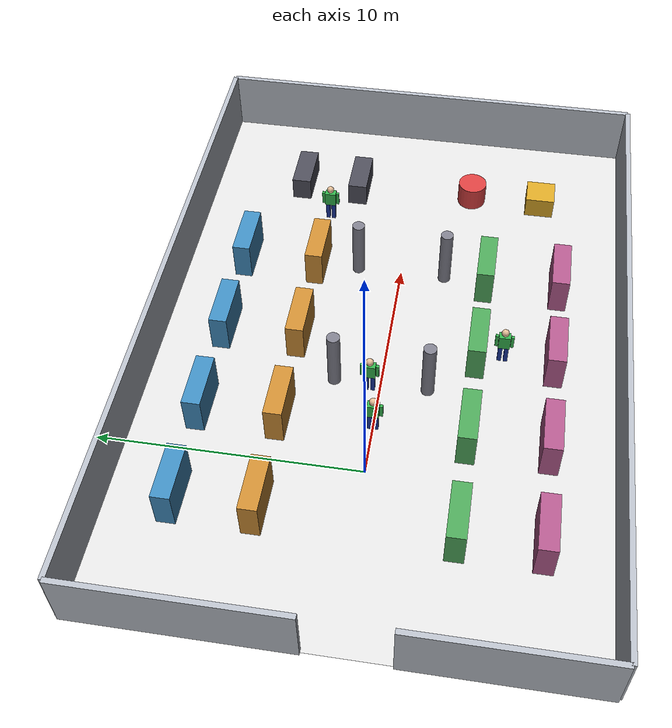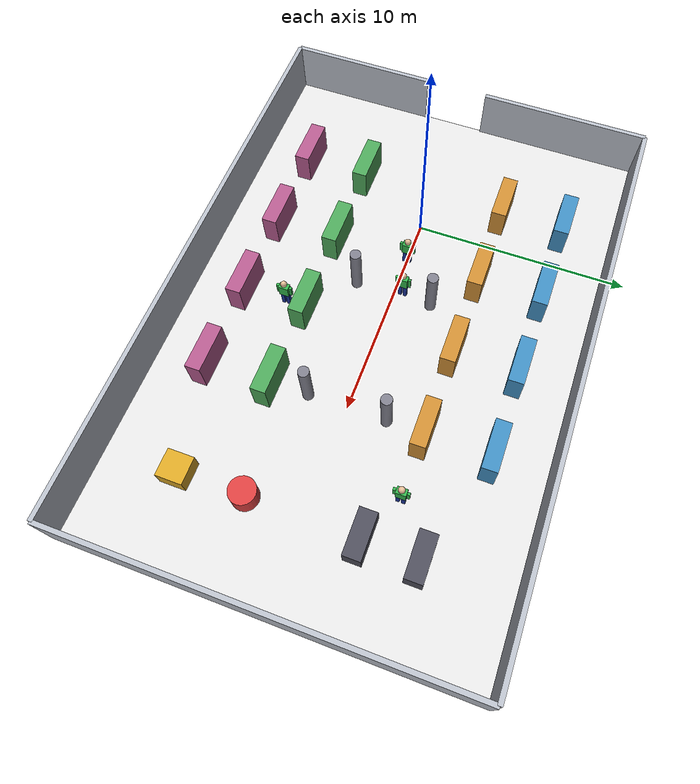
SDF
<?xml version="1.0"?>
<sdf version="1.8">
  <world name="smartcart_world">
    <physics name="1ms" type="ignored">
      <max_step_size>0.001</max_step_size>
      <real_time_factor>1.0</real_time_factor>
    </physics>

    <plugin
      filename="gz-sim-physics-system"
      name="gz::sim::systems::Physics">
    </plugin>
    <plugin
      filename="gz-sim-user-commands-system"
      name="gz::sim::systems::UserCommands">
    </plugin>
    <plugin
      filename="gz-sim-scene-broadcaster-system"
      name="gz::sim::systems::SceneBroadcaster">
    </plugin>
    <plugin
      filename="gz-sim-sensors-system"
      name="gz::sim::systems::Sensors">
      <render_engine>ogre2</render_engine>
    </plugin>

    <gui fullscreen="0">
      <camera name="user_camera">
        <pose>-4.0 -6.0 6.5 0 0.65 0.75</pose>
        <view_controller>orbit</view_controller>
      </camera>
    </gui>

    <!-- Sunlight -->
    <light type="directional" name="sun">
      <cast_shadows>true</cast_shadows>
      <pose>6.0 0 15 0 0 0</pose>
      <diffuse>0.9 0.9 0.9 1</diffuse>
      <specular>0.2 0.2 0.2 1</specular>
      <direction>-0.5 0.2 -0.85</direction>
    </light>

    <!-- Supermarket / Shopping Mall Floor (26m x 18m) -->
    <model name="supermarket_floor">
      <static>true</static>
      <pose>6.0 0.0 0.0 0 0 0</pose>
      <link name="floor_link">
        <collision name="floor_collision">
          <geometry>
            <plane>
              <normal>0 0 1</normal>
              <size>26.0 18.0</size>
            </plane>
          </geometry>
        </collision>
        <visual name="floor_visual">
          <geometry>
            <plane>
              <normal>0 0 1</normal>
              <size>26.0 18.0</size>
            </plane>
          </geometry>
          <material>
            <ambient>0.88 0.88 0.88 1.0</ambient>
            <diffuse>0.88 0.88 0.88 1.0</diffuse>
            <specular>0.25 0.25 0.25 1.0</specular>
          </material>
        </visual>
      </link>
    </model>

    <!-- Perimeter Walls -->
    <!-- North Wall (y = 9.0) -->
    <model name="wall_north">
      <static>true</static>
      <pose>6.0 9.0 1.25 0 0 0</pose>
      <link name="link">
        <collision name="collision">
          <geometry><box><size>26.0 0.2 2.5</size></box></geometry>
        </collision>
        <visual name="visual">
          <geometry><box><size>26.0 0.2 2.5</size></box></geometry>
          <material>
            <ambient>0.72 0.74 0.78 1.0</ambient>
            <diffuse>0.72 0.74 0.78 1.0</diffuse>
          </material>
        </visual>
      </link>
    </model>

    <!-- South Wall (y = -9.0) -->
    <model name="wall_south">
      <static>true</static>
      <pose>6.0 -9.0 1.25 0 0 0</pose>
      <link name="link">
        <collision name="collision">
          <geometry><box><size>26.0 0.2 2.5</size></box></geometry>
        </collision>
        <visual name="visual">
          <geometry><box><size>26.0 0.2 2.5</size></box></geometry>
          <material>
            <ambient>0.72 0.74 0.78 1.0</ambient>
            <diffuse>0.72 0.74 0.78 1.0</diffuse>
          </material>
        </visual>
      </link>
    </model>

    <!-- East Wall (x = 19.0) -->
    <model name="wall_east">
      <static>true</static>
      <pose>19.0 0.0 1.25 0 0 0</pose>
      <link name="link">
        <collision name="collision">
          <geometry><box><size>0.2 18.0 2.5</size></box></geometry>
        </collision>
        <visual name="visual">
          <geometry><box><size>0.2 18.0 2.5</size></box></geometry>
          <material>
            <ambient>0.72 0.74 0.78 1.0</ambient>
            <diffuse>0.72 0.74 0.78 1.0</diffuse>
          </material>
        </visual>
      </link>
    </model>

    <!-- West Wall - Segment North (x = -7.0, y = 4.0 to 9.0) -->
    <model name="wall_west_north">
      <static>true</static>
      <pose>-7.0 5.0 1.25 0 0 0</pose>
      <link name="link">
        <collision name="collision">
          <geometry><box><size>0.2 8.0 2.5</size></box></geometry>
        </collision>
        <visual name="visual">
          <geometry><box><size>0.2 8.0 2.5</size></box></geometry>
          <material>
            <ambient>0.72 0.74 0.78 1.0</ambient>
            <diffuse>0.72 0.74 0.78 1.0</diffuse>
          </material>
        </visual>
      </link>
    </model>

    <!-- West Wall - Segment South (x = -7.0, y = -9.0 to -2.0) -->
    <model name="wall_west_south">
      <static>true</static>
      <pose>-7.0 -5.5 1.25 0 0 0</pose>
      <link name="link">
        <collision name="collision">
          <geometry><box><size>0.2 7.0 2.5</size></box></geometry>
        </collision>
        <visual name="visual">
          <geometry><box><size>0.2 7.0 2.5</size></box></geometry>
          <material>
            <ambient>0.72 0.74 0.78 1.0</ambient>
            <diffuse>0.72 0.74 0.78 1.0</diffuse>
          </material>
        </visual>
      </link>
    </model>

    <!-- North Aisle Rows (Aisle A: y=3.5, Aisle B: y=6.5)                 -->
    <!-- Aisle A Shelves (Produce / Pantry Row 1) -->
    <model name="shelf_north_a1">
      <static>true</static>
      <pose>-2.0 3.5 0.8 0 0 0</pose>
      <link name="link">
        <collision name="collision"><geometry><box><size>2.2 0.7 1.6</size></box></geometry></collision>
        <visual name="visual"><geometry><box><size>2.2 0.7 1.6</size></box></geometry>
          <material><ambient>0.8 0.55 0.2 1.0</ambient><diffuse>0.8 0.55 0.2 1.0</diffuse></material>
        </visual>
      </link>
    </model>

    <model name="shelf_north_a2">
      <static>true</static>
      <pose>2.0 3.5 0.8 0 0 0</pose>
      <link name="link">
        <collision name="collision"><geometry><box><size>2.2 0.7 1.6</size></box></geometry></collision>
        <visual name="visual"><geometry><box><size>2.2 0.7 1.6</size></box></geometry>
          <material><ambient>0.8 0.55 0.2 1.0</ambient><diffuse>0.8 0.55 0.2 1.0</diffuse></material>
        </visual>
      </link>
    </model>

    <model name="shelf_north_a3">
      <static>true</static>
      <pose>6.0 3.5 0.8 0 0 0</pose>
      <link name="link">
        <collision name="collision"><geometry><box><size>2.2 0.7 1.6</size></box></geometry></collision>
        <visual name="visual"><geometry><box><size>2.2 0.7 1.6</size></box></geometry>
          <material><ambient>0.8 0.55 0.2 1.0</ambient><diffuse>0.8 0.55 0.2 1.0</diffuse></material>
        </visual>
      </link>
    </model>

    <model name="shelf_north_a4">
      <static>true</static>
      <pose>10.0 3.5 0.8 0 0 0</pose>
      <link name="link">
        <collision name="collision"><geometry><box><size>2.2 0.7 1.6</size></box></geometry></collision>
        <visual name="visual"><geometry><box><size>2.2 0.7 1.6</size></box></geometry>
          <material><ambient>0.8 0.55 0.2 1.0</ambient><diffuse>0.8 0.55 0.2 1.0</diffuse></material>
        </visual>
      </link>
    </model>

    <!-- Aisle B Shelves (Snacks / Beverages Row 2) -->
    <model name="shelf_north_b1">
      <static>true</static>
      <pose>-2.0 6.5 0.8 0 0 0</pose>
      <link name="link">
        <collision name="collision"><geometry><box><size>2.2 0.7 1.6</size></box></geometry></collision>
        <visual name="visual"><geometry><box><size>2.2 0.7 1.6</size></box></geometry>
          <material><ambient>0.25 0.55 0.75 1.0</ambient><diffuse>0.25 0.55 0.75 1.0</diffuse></material>
        </visual>
      </link>
    </model>

    <model name="shelf_north_b2">
      <static>true</static>
      <pose>2.0 6.5 0.8 0 0 0</pose>
      <link name="link">
        <collision name="collision"><geometry><box><size>2.2 0.7 1.6</size></box></geometry></collision>
        <visual name="visual"><geometry><box><size>2.2 0.7 1.6</size></box></geometry>
          <material><ambient>0.25 0.55 0.75 1.0</ambient><diffuse>0.25 0.55 0.75 1.0</diffuse></material>
        </visual>
      </link>
    </model>

    <model name="shelf_north_b3">
      <static>true</static>
      <pose>6.0 6.5 0.8 0 0 0</pose>
      <link name="link">
        <collision name="collision"><geometry><box><size>2.2 0.7 1.6</size></box></geometry></collision>
        <visual name="visual"><geometry><box><size>2.2 0.7 1.6</size></box></geometry>
          <material><ambient>0.25 0.55 0.75 1.0</ambient><diffuse>0.25 0.55 0.75 1.0</diffuse></material>
        </visual>
      </link>
    </model>

    <model name="shelf_north_b4">
      <static>true</static>
      <pose>10.0 6.5 0.8 0 0 0</pose>
      <link name="link">
        <collision name="collision"><geometry><box><size>2.2 0.7 1.6</size></box></geometry></collision>
        <visual name="visual"><geometry><box><size>2.2 0.7 1.6</size></box></geometry>
          <material><ambient>0.25 0.55 0.75 1.0</ambient><diffuse>0.25 0.55 0.75 1.0</diffuse></material>
        </visual>
      </link>
    </model>

    <!-- South Aisle Rows (Aisle C: y=-3.5, Aisle D: y=-6.5)                -->
    <!-- Aisle C Shelves (Dairy / Bakery Row 3) -->
    <model name="shelf_south_c1">
      <static>true</static>
      <pose>-2.0 -3.5 0.8 0 0 0</pose>
      <link name="link">
        <collision name="collision"><geometry><box><size>2.2 0.7 1.6</size></box></geometry></collision>
        <visual name="visual"><geometry><box><size>2.2 0.7 1.6</size></box></geometry>
          <material><ambient>0.3 0.65 0.35 1.0</ambient><diffuse>0.3 0.65 0.35 1.0</diffuse></material>
        </visual>
      </link>
    </model>

    <model name="shelf_south_c2">
      <static>true</static>
      <pose>2.0 -3.5 0.8 0 0 0</pose>
      <link name="link">
        <collision name="collision"><geometry><box><size>2.2 0.7 1.6</size></box></geometry></collision>
        <visual name="visual"><geometry><box><size>2.2 0.7 1.6</size></box></geometry>
          <material><ambient>0.3 0.65 0.35 1.0</ambient><diffuse>0.3 0.65 0.35 1.0</diffuse></material>
        </visual>
      </link>
    </model>

    <model name="shelf_south_c3">
      <static>true</static>
      <pose>6.0 -3.5 0.8 0 0 0</pose>
      <link name="link">
        <collision name="collision"><geometry><box><size>2.2 0.7 1.6</size></box></geometry></collision>
        <visual name="visual"><geometry><box><size>2.2 0.7 1.6</size></box></geometry>
          <material><ambient>0.3 0.65 0.35 1.0</ambient><diffuse>0.3 0.65 0.35 1.0</diffuse></material>
        </visual>
      </link>
    </model>

    <model name="shelf_south_c4">
      <static>true</static>
      <pose>10.0 -3.5 0.8 0 0 0</pose>
      <link name="link">
        <collision name="collision"><geometry><box><size>2.2 0.7 1.6</size></box></geometry></collision>
        <visual name="visual"><geometry><box><size>2.2 0.7 1.6</size></box></geometry>
          <material><ambient>0.3 0.65 0.35 1.0</ambient><diffuse>0.3 0.65 0.35 1.0</diffuse></material>
        </visual>
      </link>
    </model>

    <!-- Aisle D Shelves (Household / Essentials Row 4) -->
    <model name="shelf_south_d1">
      <static>true</static>
      <pose>-2.0 -6.5 0.8 0 0 0</pose>
      <link name="link">
        <collision name="collision"><geometry><box><size>2.2 0.7 1.6</size></box></geometry></collision>
        <visual name="visual"><geometry><box><size>2.2 0.7 1.6</size></box></geometry>
          <material><ambient>0.7 0.35 0.55 1.0</ambient><diffuse>0.7 0.35 0.55 1.0</diffuse></material>
        </visual>
      </link>
    </model>

    <model name="shelf_south_d2">
      <static>true</static>
      <pose>2.0 -6.5 0.8 0 0 0</pose>
      <link name="link">
        <collision name="collision"><geometry><box><size>2.2 0.7 1.6</size></box></geometry></collision>
        <visual name="visual"><geometry><box><size>2.2 0.7 1.6</size></box></geometry>
          <material><ambient>0.7 0.35 0.55 1.0</ambient><diffuse>0.7 0.35 0.55 1.0</diffuse></material>
        </visual>
      </link>
    </model>

    <model name="shelf_south_d3">
      <static>true</static>
      <pose>6.0 -6.5 0.8 0 0 0</pose>
      <link name="link">
        <collision name="collision"><geometry><box><size>2.2 0.7 1.6</size></box></geometry></collision>
        <visual name="visual"><geometry><box><size>2.2 0.7 1.6</size></box></geometry>
          <material><ambient>0.7 0.35 0.55 1.0</ambient><diffuse>0.7 0.35 0.55 1.0</diffuse></material>
        </visual>
      </link>
    </model>

    <model name="shelf_south_d4">
      <static>true</static>
      <pose>10.0 -6.5 0.8 0 0 0</pose>
      <link name="link">
        <collision name="collision"><geometry><box><size>2.2 0.7 1.6</size></box></geometry></collision>
        <visual name="visual"><geometry><box><size>2.2 0.7 1.6</size></box></geometry>
          <material><ambient>0.7 0.35 0.55 1.0</ambient><diffuse>0.7 0.35 0.55 1.0</diffuse></material>
        </visual>
      </link>
    </model>

    <!-- Checkout Counters & Payment Lanes (East Zone)                     -->
    <model name="checkout_counter_1">
      <static>true</static>
      <pose>15.0 5.0 0.5 0 0 0</pose>
      <link name="link">
        <collision name="collision"><geometry><box><size>2.0 0.8 1.0</size></box></geometry></collision>
        <visual name="visual"><geometry><box><size>2.0 0.8 1.0</size></box></geometry>
          <material><ambient>0.3 0.3 0.35 1.0</ambient><diffuse>0.3 0.3 0.35 1.0</diffuse></material>
        </visual>
      </link>
    </model>

    <model name="checkout_counter_2">
      <static>true</static>
      <pose>15.0 2.5 0.5 0 0 0</pose>
      <link name="link">
        <collision name="collision"><geometry><box><size>2.0 0.8 1.0</size></box></geometry></collision>
        <visual name="visual"><geometry><box><size>2.0 0.8 1.0</size></box></geometry>
          <material><ambient>0.3 0.3 0.35 1.0</ambient><diffuse>0.3 0.3 0.35 1.0</diffuse></material>
        </visual>
      </link>
    </model>

    <!-- Promotional Displays & Kiosks (East Plaza / South-East)           -->
    <model name="promo_display_1">
      <static>true</static>
      <pose>15.0 -2.5 0.5 0 0 0</pose>
      <link name="link">
        <collision name="collision"><geometry><cylinder><radius>0.6</radius><length>1.0</length></cylinder></geometry></collision>
        <visual name="visual"><geometry><cylinder><radius>0.6</radius><length>1.0</length></cylinder></geometry>
          <material><ambient>0.85 0.25 0.25 1.0</ambient><diffuse>0.85 0.25 0.25 1.0</diffuse></material>
        </visual>
      </link>
    </model>

    <model name="promo_display_2">
      <static>true</static>
      <pose>15.0 -5.5 0.45 0 0 0</pose>
      <link name="link">
        <collision name="collision"><geometry><box><size>1.2 1.2 0.9</size></box></geometry></collision>
        <visual name="visual"><geometry><box><size>1.2 1.2 0.9</size></box></geometry>
          <material><ambient>0.85 0.65 0.15 1.0</ambient><diffuse>0.85 0.65 0.15 1.0</diffuse></material>
        </visual>
      </link>
    </model>

    <!-- Structural Architectural Columns (Static obstacles for safety)   -->
    <model name="pillar_1">
      <static>true</static>
      <pose>4.0 1.8 1.25 0 0 0</pose>
      <link name="link">
        <collision name="collision"><geometry><cylinder><radius>0.25</radius><length>2.5</length></cylinder></geometry></collision>
        <visual name="visual"><geometry><cylinder><radius>0.25</radius><length>2.5</length></cylinder></geometry>
          <material><ambient>0.5 0.5 0.55 1.0</ambient><diffuse>0.5 0.5 0.55 1.0</diffuse></material>
        </visual>
      </link>
    </model>

    <model name="pillar_2">
      <static>true</static>
      <pose>4.0 -1.8 1.25 0 0 0</pose>
      <link name="link">
        <collision name="collision"><geometry><cylinder><radius>0.25</radius><length>2.5</length></cylinder></geometry></collision>
        <visual name="visual"><geometry><cylinder><radius>0.25</radius><length>2.5</length></cylinder></geometry>
          <material><ambient>0.5 0.5 0.55 1.0</ambient><diffuse>0.5 0.5 0.55 1.0</diffuse></material>
        </visual>
      </link>
    </model>

    <model name="pillar_3">
      <static>true</static>
      <pose>10.0 1.8 1.25 0 0 0</pose>
      <link name="link">
        <collision name="collision"><geometry><cylinder><radius>0.25</radius><length>2.5</length></cylinder></geometry></collision>
        <visual name="visual"><geometry><cylinder><radius>0.25</radius><length>2.5</length></cylinder></geometry>
          <material><ambient>0.5 0.5 0.55 1.0</ambient><diffuse>0.5 0.5 0.55 1.0</diffuse></material>
        </visual>
      </link>
    </model>

    <model name="pillar_4">
      <static>true</static>
      <pose>10.0 -1.8 1.25 0 0 0</pose>
      <link name="link">
        <collision name="collision"><geometry><cylinder><radius>0.25</radius><length>2.5</length></cylinder></geometry></collision>
        <visual name="visual"><geometry><cylinder><radius>0.25</radius><length>2.5</length></cylinder></geometry>
          <material><ambient>0.5 0.5 0.55 1.0</ambient><diffuse>0.5 0.5 0.55 1.0</diffuse></material>
        </visual>
      </link>
    </model>

    <!-- Four Simulated People (Independently controllable crowd)          -->
    <!-- Human 1: Central Aisle (in front of SmartCart) -->
    <include>
      <name>human_1</name>
      <uri>model://human</uri>
      <pose>2.0 0.0 0.0 0 0 0</pose>
    </include>

    <!-- Human 2: Central Aisle (Bystander, slightly behind Human 1) -->
    <include>
      <name>human_2</name>
      <uri>model://human</uri>
      <pose>3.8 0.4 0.0 0 0 0</pose>
    </include>

    <!-- Human 3: South Aisle C (Dairy / Bakery) -->
    <include>
      <name>human_3</name>
      <uri>model://human</uri>
      <pose>6.0 -4.5 0.0 0 0 0</pose>
    </include>

    <!-- Human 4: East Checkout Area -->
    <include>
      <name>human_4</name>
      <uri>model://human</uri>
      <pose>13.0 3.5 0.0 0 0 0</pose>
    </include>

  </world>
</sdf>

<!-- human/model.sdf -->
<sdf version="1.8">
  <model name="human">
    <static>false</static>
    <link name="human_link">
      <inertial>
        <pose>0 0 0.9 0 0 0</pose>
        <mass>70.0</mass>
        <inertia>
          <ixx>15.0</ixx>
          <ixy>0.0</ixy>
          <ixz>0.0</ixz>
          <iyy>15.0</iyy>
          <iyz>0.0</iyz>
          <izz>4.0</izz>
        </inertia>
      </inertial>

      <!-- Head Visual & Collision -->
      <visual name="head_visual">
        <pose>0 0 1.55 0 0 0</pose>
        <geometry>
          <sphere>
            <radius>0.15</radius>
          </sphere>
        </geometry>
        <material>
          <ambient>0.9 0.75 0.6 1.0</ambient>
          <diffuse>0.9 0.75 0.6 1.0</diffuse>
          <specular>0.1 0.1 0.1 1.0</specular>
        </material>
      </visual>
      <collision name="head_collision">
        <pose>0 0 1.55 0 0 0</pose>
        <geometry>
          <sphere>
            <radius>0.15</radius>
          </sphere>
        </geometry>
      </collision>

      <!-- Torso Visual & Collision -->
      <visual name="torso_visual">
        <pose>0 0 1.1 0 0 0</pose>
        <geometry>
          <box>
            <size>0.3 0.45 0.6</size>
          </box>
        </geometry>
        <material>
          <ambient>0.2 0.7 0.3 1.0</ambient>
          <diffuse>0.2 0.7 0.3 1.0</diffuse>
          <specular>0.1 0.1 0.1 1.0</specular>
        </material>
      </visual>
      <collision name="torso_collision">
        <pose>0 0 1.1 0 0 0</pose>
        <geometry>
          <box>
            <size>0.3 0.45 0.6</size>
          </box>
        </geometry>
      </collision>

      <!-- Left Arm Visual & Collision -->
      <visual name="left_arm_visual">
        <pose>0 0.3 1.1 0 0 0</pose>
        <geometry>
          <box>
            <size>0.12 0.12 0.55</size>
          </box>
        </geometry>
        <material>
          <ambient>0.2 0.7 0.3 1.0</ambient>
          <diffuse>0.2 0.7 0.3 1.0</diffuse>
          <specular>0.1 0.1 0.1 1.0</specular>
        </material>
      </visual>
      <collision name="left_arm_collision">
        <pose>0 0.3 1.1 0 0 0</pose>
        <geometry>
          <box>
            <size>0.12 0.12 0.55</size>
          </box>
        </geometry>
      </collision>

      <!-- Right Arm Visual & Collision -->
      <visual name="right_arm_visual">
        <pose>0 -0.3 1.1 0 0 0</pose>
        <geometry>
          <box>
            <size>0.12 0.12 0.55</size>
          </box>
        </geometry>
        <material>
          <ambient>0.2 0.7 0.3 1.0</ambient>
          <diffuse>0.2 0.7 0.3 1.0</diffuse>
          <specular>0.1 0.1 0.1 1.0</specular>
        </material>
      </visual>
      <collision name="right_arm_collision">
        <pose>0 -0.3 1.1 0 0 0</pose>
        <geometry>
          <box>
            <size>0.12 0.12 0.55</size>
          </box>
        </geometry>
      </collision>

      <!-- Left Leg Visual & Collision -->
      <visual name="left_leg_visual">
        <pose>0 0.12 0.4 0 0 0</pose>
        <geometry>
          <box>
            <size>0.18 0.16 0.8</size>
          </box>
        </geometry>
        <material>
          <ambient>0.1 0.2 0.6 1.0</ambient>
          <diffuse>0.1 0.2 0.6 1.0</diffuse>
          <specular>0.1 0.1 0.1 1.0</specular>
        </material>
      </visual>
      <collision name="left_leg_collision">
        <pose>0 0.12 0.4 0 0 0</pose>
        <geometry>
          <box>
            <size>0.18 0.16 0.8</size>
          </box>
        </geometry>
      </collision>

      <!-- Right Leg Visual & Collision -->
      <visual name="right_leg_visual">
        <pose>0 -0.12 0.4 0 0 0</pose>
        <geometry>
          <box>
            <size>0.18 0.16 0.8</size>
          </box>
        </geometry>
        <material>
          <ambient>0.1 0.2 0.6 1.0</ambient>
          <diffuse>0.1 0.2 0.6 1.0</diffuse>
          <specular>0.1 0.1 0.1 1.0</specular>
        </material>
      </visual>
      <collision name="right_leg_collision">
        <pose>0 -0.12 0.4 0 0 0</pose>
        <geometry>
          <box>
            <size>0.18 0.16 0.8</size>
          </box>
        </geometry>
      </collision>
    </link>
  </model>
</sdf>
